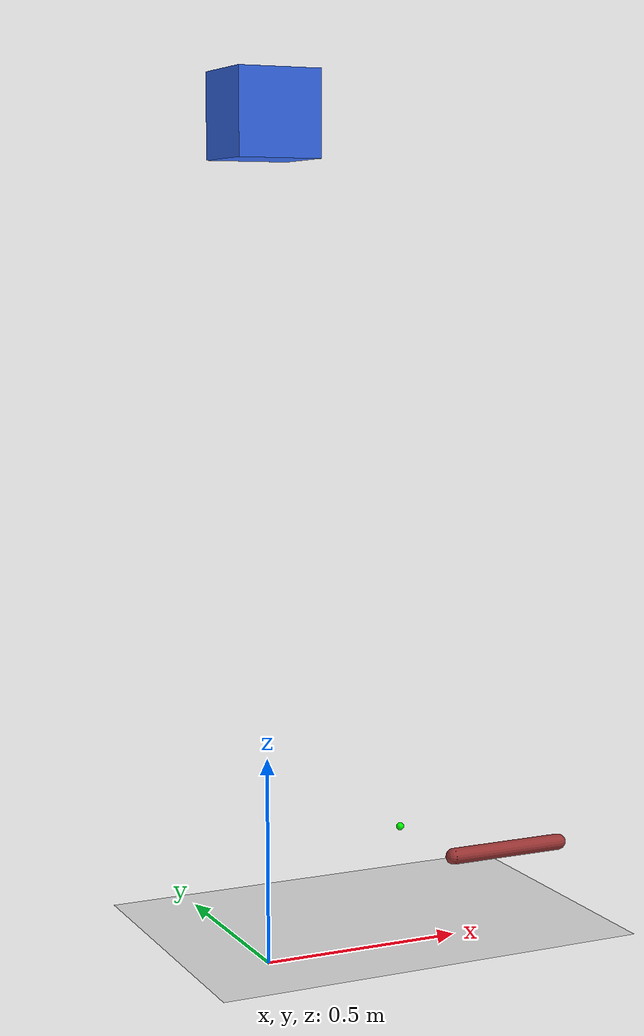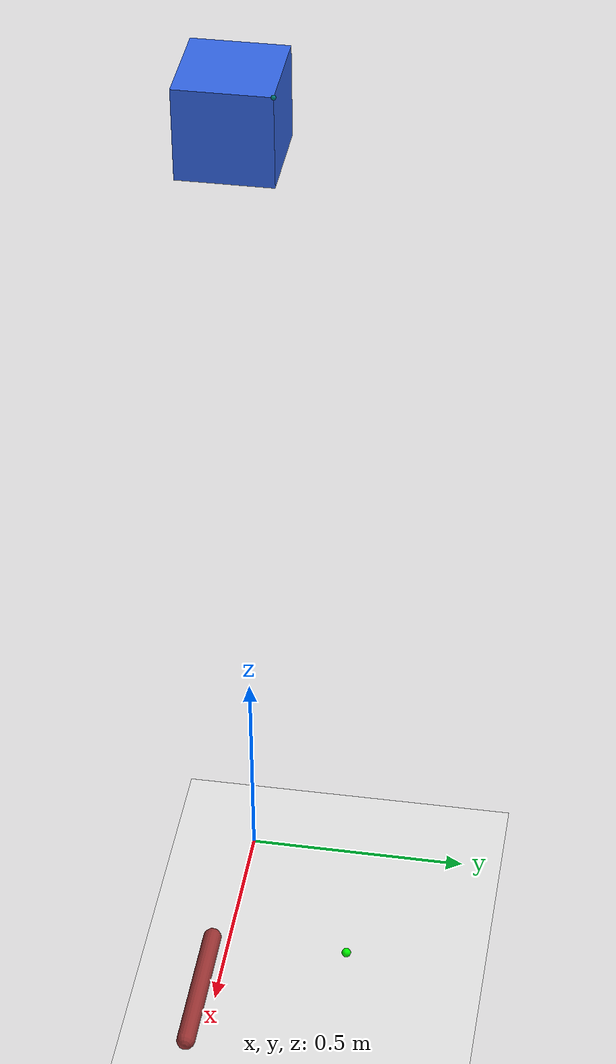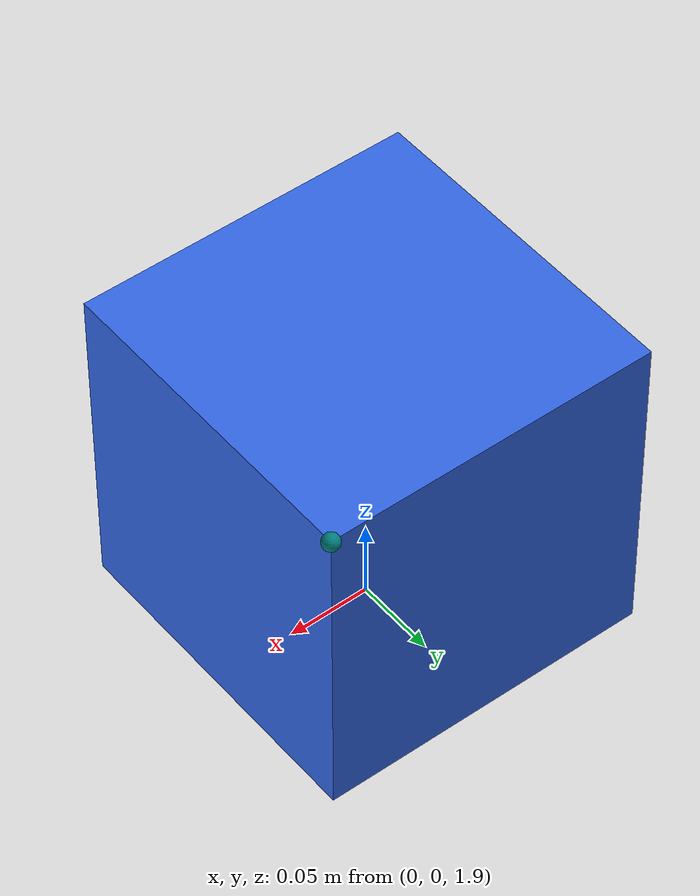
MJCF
<mujoco model="contact_constraint_demo">
  <option timestep="0.01" gravity="0 0 -9.81"/>

  <worldbody>
    <!-- Mặt đất -->
    <geom type="plane" size="2 2 0.1" rgba="0.9 0.9 0.9 1"/>

    <!-- Vật rơi tự do -->
    <body name="falling_box" pos="0 0 2">
      <freejoint/>
      <geom type="box" size="0.1 0.1 0.1" rgba="0.2 0.4 0.9 1" friction="0.8 0.005 0.0001"/>
      <site name="box_site" pos="0.1 0.1 0.1" rgba="0 0.5 0.5 1"/>
    </body>

    <!-- Cánh tay cố định có ràng buộc -->
    <body name="arm_base" pos="0.5 0 0.2">
      <joint name="hinge_joint" type="hinge" axis="0 0 1" range="-90 90" limited="true"/>
      <geom type="capsule" fromto="0 0 0 0.3 0 0" size="0.02" rgba="0.6 0.2 0.2 1"/>
      <site name="arm_tip" pos="0.3 0 0" size="0.01" rgba="1 0 0 1"/>
    </body>

    <!-- Vật cố định để ràng buộc khoảng cách -->
    <body name="anchor" pos="0.5 0.3 0.2">
      <site name="anchor_site" pos="0 0 0" size="0.01" rgba="0 1 0 1"/>
    </body>
  </worldbody>

  <equality>
    <!-- Ràng buộc khoảng cách giữa hai site -->
    <connect name="spring_cons1" site1="arm_tip" site2="anchor_site" />
    <connect name="spring_cons2" site1="box_site" site2="anchor_site" />
  </equality>

  <sensor>
    <!-- Đo lực tại joint (từ constraint phản ứng) -->
    <jointactuatorfrc joint="hinge_joint"/>
    <!-- Đo lực tiếp xúc -->
    <force site="arm_tip"/>
  </sensor>
</mujoco>
